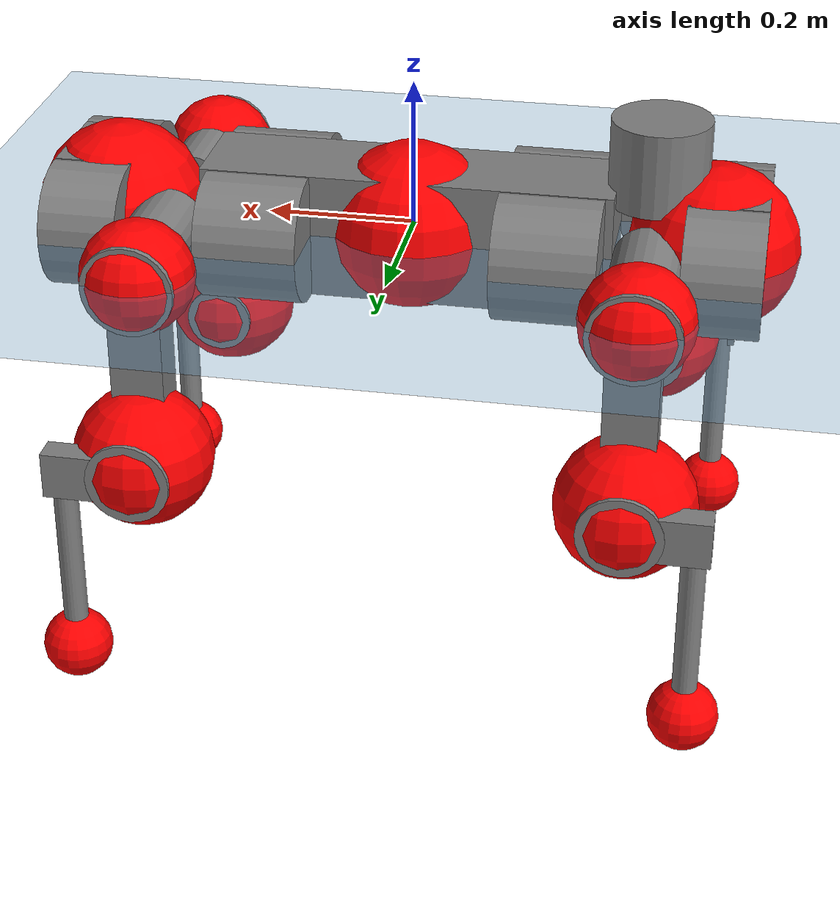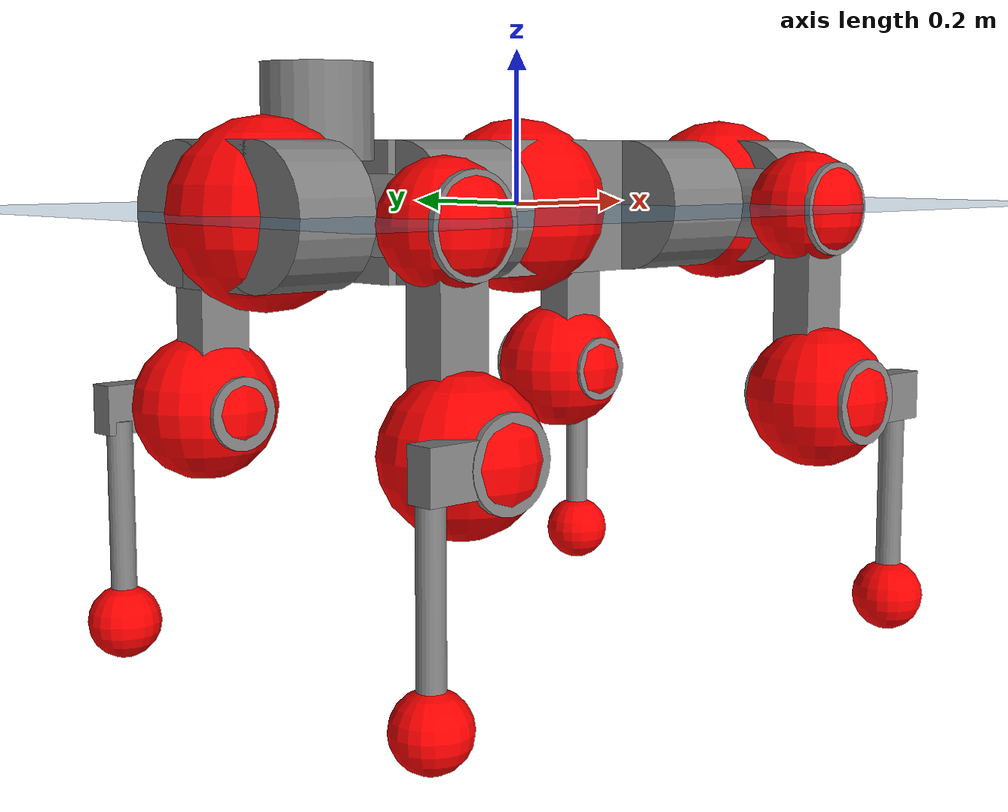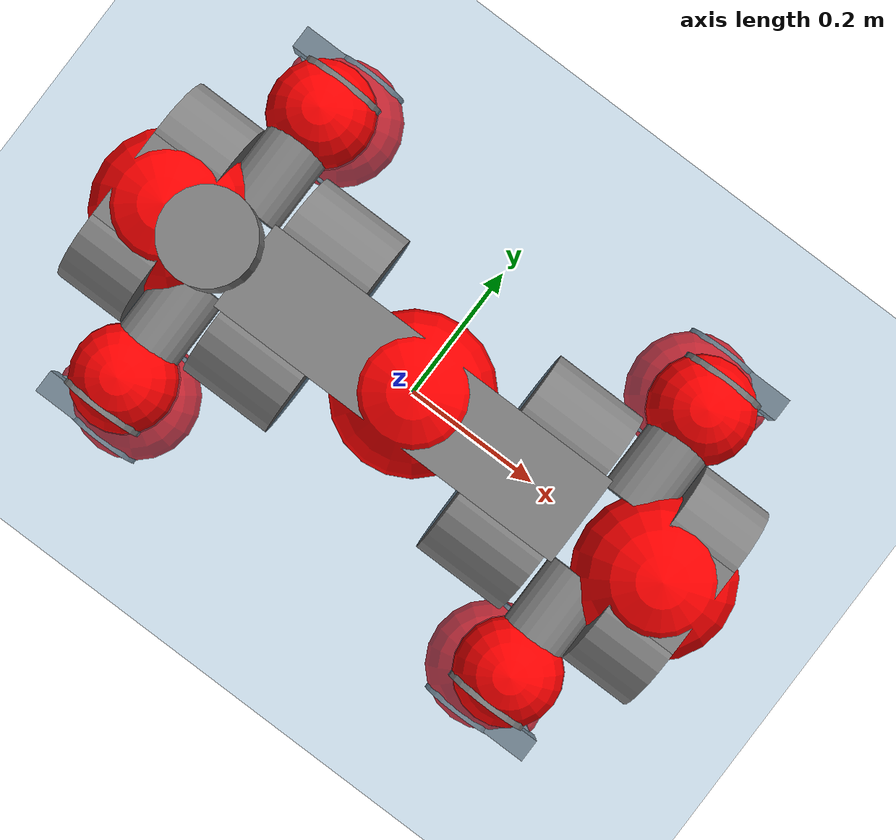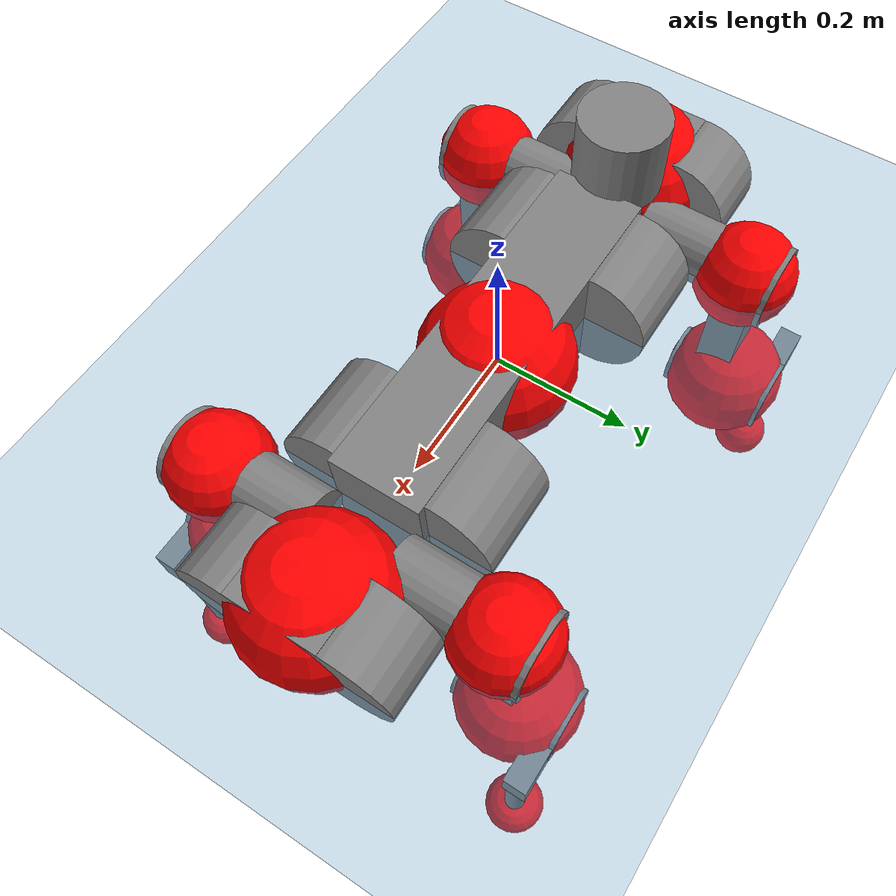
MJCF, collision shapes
<mujoco model="anymal_c">
  <compiler angle="radian" assetdir="assets" balanceinertia="true" inertiafromgeom="false"/>

  <option timestep="0.005" density="1.2" viscosity="2e-05"/>

  <size nkey="1"/>

  <visual>
    <quality shadowsize="8192"/>
    <map shadowclip="0.5"/>
  </visual>

  <default>
    <default class="/">
      <material specular="0" shininess="0.25"/>
      <geom contype="0" conaffinity="0" group="1" solref="-1000 -80"/>
      <site size="0.01 0.005 0.005" group="5"/>
      <general forcelimited="true" forcerange="-80 80" biastype="affine" gainprm="80" biasprm="0 -80 -2"/>
      <default class="anymal_c">
        <joint armature="0.01" damping="0.01" frictionloss="0.1"/>
        <default class="visual">
          <geom type="mesh" group="2"/>
          <default class="visual_zflip"/>
        </default>
        <default class="collision">
          <geom type="cylinder" group="3"/>
          <default class="foot">
            <geom size="0.03 0 0" type="sphere" condim="6" priority="1" friction="0.8 0.02 0.01" solimp="0.015 1 0.03"/>
          </default>
        </default>
      </default>
      <default class="reward_collision_sphere">
        <geom group="5" rgba="1 0 0 1"/>
      </default>
    </default>
  </default>

  <asset>
    <texture type="skybox" colorspace="auto" name="//unnamed_texture_0" builtin="gradient" rgb1="0.95 0.95 0.95" rgb2="0.95 0.95 0.95" width="100" height="600"/>
    <texture type="2d" colorspace="auto" name="texplane" builtin="checker" rgb1="0.345 0.575 0.748" rgb2="0.345 0.575 0.748" markrgb="1 1 1" width="512" height="512"/>
    <texture type="2d" colorspace="linear" name="base" file="base.png"/>
    <texture type="2d" colorspace="linear" name="top_shell" file="top_shell.png"/>
    <texture type="2d" colorspace="linear" name="bottom_shell" file="bottom_shell.png"/>
    <texture type="2d" colorspace="linear" name="remote" file="remote.png"/>
    <texture type="2d" colorspace="linear" name="hatch" file="hatch.png"/>
    <texture type="2d" colorspace="linear" name="handle" file="handle.png"/>
    <texture type="2d" colorspace="linear" name="face" file="face.png"/>
    <texture type="2d" colorspace="linear" name="battery" file="battery.png"/>
    <texture type="2d" colorspace="linear" name="lidar_cage" file="lidar_cage.png"/>
    <texture type="2d" colorspace="linear" name="depth_camera" file="depth_camera.png"/>
    <texture type="2d" colorspace="linear" name="wide_angle_camera" file="wide_angle_camera.png"/>
    <texture type="2d" colorspace="linear" name="lidar" file="lidar.png"/>
    <texture type="2d" colorspace="linear" name="drive" file="drive.png"/>
    <texture type="2d" colorspace="linear" name="hip_l" file="hip_l.png"/>
    <texture type="2d" colorspace="linear" name="shank_l" file="shank_l.png"/>
    <texture type="2d" colorspace="linear" name="foot" file="foot.png"/>
    <texture type="2d" colorspace="linear" name="thigh" file="thigh.png"/>
    <texture type="2d" colorspace="linear" name="shank_r" file="shank_r.png"/>
    <texture type="2d" colorspace="linear" name="hip_r" file="hip_r.png"/>
    <material name="MatPlane" class="/" texture="texplane" texuniform="true" texrepeat="2 2" specular="0.9" shininess="0.5"/>
    <material name="black_plastic" class="/" rgba="0.007 0.007 0.007 1"/>
    <material name="green" class="/" rgba="0.052 0.178 0.033 1"/>
    <material name="red" class="/" rgba="0.178 0.006 0.005 1"/>
    <material name="yellow" class="/" rgba="0.178 0.119 0.006 1"/>
    <material name="lwl" class="/" rgba="0.8 0.8 0.8 1"/>
    <material name="base" class="/" texture="base"/>
    <material name="top_shell" class="/" texture="top_shell"/>
    <material name="bottom_shell" class="/" texture="bottom_shell"/>
    <material name="hip_l" class="/" texture="hip_l"/>
    <material name="thigh" class="/" texture="thigh"/>
    <material name="shank_l" class="/" texture="shank_l"/>
    <material name="foot" class="/" texture="foot"/>
    <material name="hip_r" class="/" texture="hip_r"/>
    <material name="shank" class="/" texture="shank_r"/>
    <material name="hatch" class="/" texture="hatch"/>
    <material name="remote" class="/" texture="remote"/>
    <material name="handle" class="/" texture="handle"/>
    <material name="face" class="/" texture="face"/>
    <material name="depth_camera" class="/" texture="depth_camera"/>
    <material name="wide_angle_camera" class="/" texture="wide_angle_camera"/>
    <material name="battery" class="/" texture="battery"/>
    <material name="lidar_cage" class="/" texture="lidar_cage"/>
    <material name="lidar" class="/" texture="lidar"/>
    <material name="drive" class="/" texture="drive"/>
    <mesh name="base_0" class="/" file="base_0.obj"/>
    <mesh name="base_1" class="/" file="base_1.obj"/>
    <mesh name="base_2" class="/" file="base_2.obj"/>
    <mesh name="base_3" class="/" file="base_3.obj"/>
    <mesh name="base_4" class="/" file="base_4.obj"/>
    <mesh name="base_5" class="/" file="base_5.obj"/>
    <mesh name="top_shell" class="/" file="top_shell.obj"/>
    <mesh name="bottom_shell" class="/" file="bottom_shell.obj"/>
    <mesh name="remote" class="/" file="remote.obj"/>
    <mesh name="handle" class="/" file="handle.obj"/>
    <mesh name="face" class="/" file="face.obj"/>
    <mesh name="wide_angle_camera" class="/" file="wide_angle_camera.obj"/>
    <mesh name="depth_camera" class="/" file="depth_camera.obj"/>
    <mesh name="battery" class="/" file="battery.obj"/>
    <mesh name="lidar_cage" class="/" file="lidar_cage.obj"/>
    <mesh name="lidar" class="/" file="lidar.obj"/>
    <mesh name="drive" class="/" file="drive.obj"/>
    <mesh name="hip_l" class="/" file="hip_l.obj"/>
    <mesh name="thigh" class="/" file="thigh.obj"/>
    <mesh name="shank_l" class="/" file="shank_l.obj"/>
    <mesh name="foot" class="/" file="foot.obj"/>
    <mesh name="hip_r" class="/" file="hip_r.obj"/>
    <mesh name="hatch" class="/" file="hatch.obj"/>
    <mesh name="shank_r" class="/" file="shank_r.obj"/>
  </asset>

  <worldbody>
    <geom name="floor" class="/" size="100 100 0.125" type="plane" group="0" material="MatPlane"/>
    <light name="toplight_shadow" class="/" pos="0 0 5" dir="0.0990148 0.0990148 -0.990148" type="directional" ambient="0.04 0.04 0.04" diffuse="0.55 0.55 0.55" specular="0.12 0.12 0.12"/>
    <light name="toplight_fill" class="/" pos="0 0 5" dir="0.0990148 0.0990148 -0.990148" type="directional" castshadow="false" ambient="0.04 0.04 0.04" diffuse="0.3 0.3 0.3" specular="0.08 0.08 0.08"/>
    <body name="trunk" childclass="anymal_c" pos="0.00179115 -0.00127656 -0.00269097" quat="1 1.27977e-05 -7.25598e-05 -9.78143e-05">
      <inertial pos="0.00466129 -0.000815824 0.042513" quat="0.500278 0.49014 0.50918 0.500221" mass="17.392" diaginertia="0.376028 0.901576 0.121287"/>
      <joint name="//unnamed_joint_0" type="free" armature="0" damping="0" frictionloss="0"/>
      <geom name="//unnamed_geom_1" class="visual" material="green" mesh="base_0"/>
      <geom name="//unnamed_geom_2" class="visual" material="yellow" mesh="base_1"/>
      <geom name="//unnamed_geom_3" class="visual" material="red" mesh="base_2"/>
      <geom name="//unnamed_geom_4" class="visual" material="black_plastic" mesh="base_3"/>
      <geom name="//unnamed_geom_5" class="visual" material="lwl" mesh="base_4"/>
      <geom name="//unnamed_geom_6" class="visual" material="base" mesh="base_5"/>
      <geom name="trunk_1" class="collision" size="0.277109 0.0668883 0.0859993" type="box"/>
      <geom name="trunk_2" class="collision" size="0.0859993 0.0692772" pos="0.196432 0.0751904 0" quat="0.707107 0 0.707107 0"/>
      <geom name="trunk_3" class="collision" size="0.0859993 0.0692772" pos="-0.196432 0.0751904 0" quat="0.707107 0 0.707107 0"/>
      <geom name="trunk_4" class="collision" size="0.0859993 0.0692772" pos="0.196432 -0.0751904 0" quat="0.707107 0 0.707107 0"/>
      <geom name="trunk_5" class="collision" size="0.0859993 0.0692772" pos="-0.196432 -0.0751904 0" quat="0.707107 0 0.707107 0"/>
      <geom name="//unnamed_geom_12" class="visual" material="top_shell" mesh="top_shell"/>
      <geom name="//unnamed_geom_13" class="visual" material="bottom_shell" mesh="bottom_shell"/>
      <geom name="//unnamed_geom_14" class="visual" material="remote" mesh="remote"/>
      <geom name="//unnamed_geom_15" class="visual" material="handle" mesh="handle"/>
      <geom name="//unnamed_geom_16" class="visual" pos="0.374349 0 0" quat="1 0 0 0" material="face" mesh="face"/>
      <geom name="trunk_6" class="collision" size="0.0525551 0.0668883 0.0859993" pos="0.424021 0 0" type="box"/>
      <geom name="//unnamed_geom_18" class="collision" size="0.0859993 0.0525551" pos="0.424021 0.0751904 0" quat="0.707107 0 0.707107 0"/>
      <geom name="//unnamed_geom_19" class="collision" size="0.0859993 0.0525551" pos="0.424021 -0.0751904 0" quat="0.707107 0 0.707107 0"/>
      <geom name="//unnamed_geom_20" class="visual" pos="0.416931 0 -0.0258647" quat="0.965926 0 0.258819 0" material="depth_camera" mesh="depth_camera"/>
      <geom name="//unnamed_geom_21" class="visual" pos="0.463307 0 0.0133137" material="wide_angle_camera" mesh="wide_angle_camera"/>
      <geom name="//unnamed_geom_22" class="visual_zflip" pos="-0.374349 0 0" quat="0 0 0 1" material="face" mesh="face"/>
      <geom name="trunk_7" class="collision" size="0.0525551 0.0668883 0.0859993" pos="-0.424021 0 0" quat="0 0 0 1" type="box"/>
      <geom name="//unnamed_geom_24" class="collision" size="0.0859993 0.0525551" pos="-0.424021 -0.0751904 0" quat="0 -0.707107 0 0.707107"/>
      <geom name="//unnamed_geom_25" class="collision" size="0.0859993 0.0525551" pos="-0.424021 0.0751904 0" quat="0 -0.707107 0 0.707107"/>
      <geom name="//unnamed_geom_26" class="visual" pos="-0.416931 0 -0.0258647" quat="0 -0.258819 0 0.965926" material="depth_camera" mesh="depth_camera"/>
      <geom name="//unnamed_geom_27" class="visual_zflip" pos="-0.463307 0 0.0133137" quat="0 0 0 1" material="wide_angle_camera" mesh="wide_angle_camera"/>
      <geom name="//unnamed_geom_28" class="visual" material="battery" mesh="battery"/>
      <geom name="//unnamed_geom_29" class="visual" pos="0 0.0843728 0.0259406" quat="0.683013 -0.183013 0.183013 0.683013" material="depth_camera" mesh="depth_camera"/>
      <geom name="//unnamed_geom_30" class="visual" pos="0 -0.0843728 0.0259406" quat="0.683013 0.183013 0.183013 -0.683013" material="depth_camera" mesh="depth_camera"/>
      <geom name="//unnamed_geom_31" class="visual" pos="-0.328741 0 0.0653681" quat="1 0 0 0" material="lidar_cage" mesh="lidar_cage"/>
      <geom name="trunk_8" class="collision" size="0.0668883 0.0573329" pos="-0.328741 0 0.11873"/>
      <geom name="//unnamed_geom_33" class="visual" pos="-0.328741 6.7187e-05 0.126467" quat="0.707107 0 0 -0.707107" material="lidar" mesh="lidar"/>
      <geom name="//unnamed_geom_34" class="visual" pos="0.27085 0.111646 3.18758e-09" quat="0.258819 0.965926 0 0" material="drive" mesh="drive"/>
      <geom name="//unnamed_geom_35" class="visual" pos="0.27085 -0.111646 -3.18758e-09" quat="0.258819 -0.965926 0 0" material="drive" mesh="drive"/>
      <geom name="//unnamed_geom_36" class="visual" pos="-0.27085 0.111646 -3.18758e-09" quat="0 0 0.965926 -0.258819" material="drive" mesh="drive"/>
      <geom name="//unnamed_geom_37" class="visual" pos="-0.27085 -0.111646 3.18758e-09" quat="0 0 -0.965926 -0.258819" material="drive" mesh="drive"/>
      <geom name="//unnamed_geom_38" class="visual" pos="0.104763 0 0.0649234" quat="1 0 0 0" material="hatch" mesh="hatch"/>
      <geom name="//unnamed_geom_39" class="reward_collision_sphere" size="0.114666"/>
      <geom name="//unnamed_geom_40" class="reward_collision_sphere" size="0.114666" pos="0.40641 0 0"/>
      <geom name="//unnamed_geom_41" class="reward_collision_sphere" size="0.114666" pos="-0.40641 0 0"/>
      <site name="imu" pos="0.220436 0.0224046 0.028999" size="0.00955548"/>
      <camera name="track" pos="0 -2.1483 0" quat="0.707107 0.707107 0 0" mode="trackcom"/>
      <camera name="ego_camera" pos="0.40641 0 -0.0355745" quat="-0.5 -0.5 0.5 0.5"/>
      <body name="LF_HIP" pos="0.269232 0.110148 0.00292108" quat="0.259307 0.965795 -0.000253526 0.000816736">
        <inertial pos="0.0537362 -0.0185314 -0.00952069" quat="-0.1289 0.708448 -0.136184 0.680397" mass="2.38189" diaginertia="0.00343719 0.00710302 0.00187147"/>
        <joint name="LF_HAA" pos="0 0 0" axis="0.999921 0.00200152 -0.0124093" range="-0.713862 0.497584" armature="0.00991083" damping="0" frictionloss="0.108229"/>
        <geom name="//unnamed_geom_42" class="visual" pos="0 0.000187511 -3.07985e-05" quat="0.258819 -0.965926 0 0" material="hip_l" mesh="hip_l"/>
        <geom name="//unnamed_geom_43" class="visual" pos="0.0540977 -0.0677369 -0.0377411" quat="0.183013 -0.683013 0.683013 0.183013" material="drive" mesh="drive"/>
        <geom name="//unnamed_geom_44" class="collision" size="0.0477774 0.0668883" pos="0.0540977 -0.0128466 -0.00614104" quat="-0.353553 -0.612372 0.612372 -0.353553"/>
        <body name="LF_THIGH" pos="0.0529111 -0.0765206 -0.0357549" quat="0.182825 -0.683297 0.682832 0.18281">
          <inertial pos="0.0261119 -0.000191378 -0.21927" quat="0.993094 -0.00498321 -0.0809959 0.0847329" mass="2.58386" diaginertia="0.0179913 0.0437319 0.00223478"/>
          <joint name="LF_HFE" pos="0 0 0" axis="0.999932 1.90462e-05 0.0116631" range="-3.14508 3.15326" armature="0.00988012" damping="0.0159462" frictionloss="0.107383"/>
          <geom name="//unnamed_geom_45" class="visual" pos="-0.00340252 -5.36157e-06 0" quat="0.707107 0 0 -0.707107" material="thigh" mesh="thigh"/>
          <geom name="//unnamed_geom_46" class="collision" size="0.0621106 0.0382219" pos="0.0361253 0 0" quat="0.5 0.5 -0.5 -0.5"/>
          <geom name="//unnamed_geom_47" class="collision" size="0.035833 0.0286664 0.135032" pos="0.027094 0 -0.125679" quat="0.707107 0 0 -0.707107" type="box"/>
          <geom name="//unnamed_geom_48" class="visual" pos="0.0905843 0 -0.253468" quat="1 0 0 0" material="drive" mesh="drive"/>
          <geom name="//unnamed_geom_49" class="collision" size="0.0477774 0.0668883" pos="0.0273649 0 -0.253468" quat="0.707107 0 0.707107 0"/>
          <geom name="//unnamed_geom_50" class="reward_collision_sphere" size="0.0764438" pos="0.0225783 0 0"/>
          <body name="LF_SHANK" pos="0.0921279 0.000906976 -0.253441" quat="1 -0.000232082 -0.000144387 -0.00075029">
            <inertial pos="0.00694251 -0.0634414 -0.0726113" quat="0.992897 -0.116668 -0.00279125 -0.0231719" mass="0.527527" diaginertia="0.00588638 0.0135654 0.000608594"/>
            <joint name="LF_KFE" pos="0 0 0" axis="0.999914 -0.00355024 0.0126111" stiffness="6.9634e-05" range="-3.14259 3.14171" armature="0.0083747" damping="0.00956535" frictionloss="0.0904163"/>
            <geom name="//unnamed_geom_51" class="visual" pos="-0.00110949 -0.00591584 0" quat="0.707107 0 0 -0.707107" material="shank_l" mesh="shank_l"/>
            <geom name="LF_kfe_act" class="collision" size="0.0573329 0.019111" pos="0.0180627 0 0" quat="0.5 0.5 -0.5 -0.5"/>
            <geom name="//unnamed_geom_53" class="collision" size="0.054943 0.0322497 0.0181554" pos="0.0180627 -0.0617624 0" quat="0.5 0.5 -0.5 -0.5" type="box"/>
            <geom name="//unnamed_geom_54" class="visual" pos="0.0117862 -0.0963777 -0.300578" quat="0.382683 0 0 -0.92388" material="foot" mesh="foot"/>
            <geom name="LF_calf" class="collision" size="0.0167221 0.134973" pos="0.0117859 -0.0944713 -0.150289" quat="0.707107 0 0 -0.707107"/>
            <geom name="LF_foot" class="foot" size="0.0343021" pos="0.0117859 -0.0944713 -0.280567" quat="0.707107 0 0 -0.707107"/>
            <geom name="//unnamed_geom_57" class="reward_collision_sphere" size="0.0955548" pos="-0.0451567 0 0"/>
            <geom name="//unnamed_geom_58" class="reward_collision_sphere" size="0.0477774" pos="0.0117859 -0.0944713 -0.280567"/>
            <site name="LF_foot" class="foot" pos="0.0117859 -0.0944713 -0.280567" quat="0.707107 0 0 -0.707107" size="0.00955548"/>
          </body>
        </body>
      </body>
      <body name="RF_HIP" pos="0.271828 -0.112543 0.000767344" quat="0.259439 -0.965759 -7.73183e-05 0.00117271">
        <inertial pos="0.0516784 0.019504 -0.00762838" quat="0.135474 0.680038 0.130228 0.708686" mass="2.35735" diaginertia="0.00352045 0.00697073 0.00181987"/>
        <joint name="RF_HAA" pos="0 0 0" axis="1 -2.08189e-05 -0.000874355" range="-0.449053 0.702389" armature="0.0105766" damping="0.00997895" frictionloss="0.0862092"/>
        <geom name="//unnamed_geom_59" class="visual" pos="0 -0.000187509 -3.07984e-05" quat="0.258819 0.965926 0 0" material="hip_r" mesh="hip_r"/>
        <geom name="//unnamed_geom_60" class="visual" pos="0.0540977 0.0677369 -0.0377411" quat="0.183013 0.683013 0.683013 -0.183013" material="drive" mesh="drive"/>
        <geom name="//unnamed_geom_61" class="collision" size="0.0477774 0.0668883" pos="0.0540977 0.0128466 -0.00614104" quat="-0.353553 0.612372 0.612372 0.353553"/>
        <body name="RF_THIGH" pos="0.0554673 0.0765609 -0.0381621" quat="0.183669 0.68285 0.682974 -0.183109">
          <inertial pos="0.0267738 0.00234634 -0.220851" quat="0.992576 -0.00489867 -0.0854851 0.0863827" mass="2.67563" diaginertia="0.0174071 0.0399458 0.00224086"/>
          <joint name="RF_HFE" pos="0 0 0" axis="0.999909 0.00321331 -0.0130874" stiffness="0.00364344" range="-3.19521 3.08733" armature="0.00954888" damping="0.00836153" frictionloss="0.10823"/>
          <geom name="//unnamed_geom_62" class="visual" pos="-0.00340252 -5.36157e-06 0" quat="0.707107 0 0 -0.707107" material="thigh" mesh="thigh"/>
          <geom name="//unnamed_geom_63" class="collision" size="0.0621106 0.0382219" pos="0.0361253 0 0" quat="0.5 0.5 0.5 0.5"/>
          <geom name="//unnamed_geom_64" class="collision" size="0.035833 0.0286664 0.135032" pos="0.027094 0 -0.125679" quat="0.707107 0 0 0.707107" type="box"/>
          <geom name="//unnamed_geom_65" class="visual" pos="0.0905843 0 -0.253468" quat="1 0 0 0" material="drive" mesh="drive"/>
          <geom name="//unnamed_geom_66" class="collision" size="0.0477774 0.0668883" pos="0.0273649 0 -0.253468" quat="0.707107 0 0.707107 0"/>
          <geom name="//unnamed_geom_67" class="reward_collision_sphere" size="0.0764438" pos="0.0225783 0 0"/>
          <body name="RF_SHANK" pos="0.0925306 0.000466357 -0.254491" quat="1 5.61583e-05 5.24117e-05 -0.000103929">
            <inertial pos="0.00745551 0.0654534 -0.0739588" quat="0.992315 0.120649 -0.00301123 0.0273226" mass="0.52941" diaginertia="0.00609625 0.0130466 0.000618936"/>
            <joint name="RF_KFE" pos="0 0 0" axis="1 -0.0003742 -0.000501344" range="-3.16209 3.12334" armature="0.00944564" damping="0.0195503" frictionloss="0.106589"/>
            <geom name="//unnamed_geom_68" class="visual" pos="-0.00110948 0.00591583 0" quat="0.707107 0 0 0.707107" material="shank" mesh="shank_r"/>
            <geom name="RF_kfe_act" class="collision" size="0.0573329 0.019111" pos="0.0180627 0 0" quat="0.5 0.5 0.5 0.5"/>
            <geom name="//unnamed_geom_70" class="collision" size="0.054943 0.0322497 0.0181554" pos="0.0180627 0.0617624 0" quat="0.5 0.5 0.5 0.5" type="box"/>
            <geom name="//unnamed_geom_71" class="visual" pos="0.0117856 0.0963777 -0.300578" quat="0.382683 0 0 0.92388" material="foot" mesh="foot"/>
            <geom name="RF_calf" class="collision" size="0.0167221 0.134973" pos="0.0117859 0.0944713 -0.150289" quat="0.707107 0 0 0.707107"/>
            <geom name="RF_foot" class="foot" size="0.0290569" pos="0.0117859 0.0944713 -0.280567" quat="0.707107 0 0 0.707107"/>
            <geom name="//unnamed_geom_74" class="reward_collision_sphere" size="0.0955548" pos="-0.0451567 0 0"/>
            <geom name="//unnamed_geom_75" class="reward_collision_sphere" size="0.0477774" pos="0.0117859 0.0944713 -0.280567"/>
            <site name="RF_foot" class="foot" pos="0.0117859 0.0944713 -0.280567" quat="0.707107 0 0 0.707107" size="0.00955548"/>
          </body>
        </body>
      </body>
      <body name="LH_HIP" pos="-0.271093 0.11443 0.00204847" quat="-0.000964021 0.000736101 0.965636 -0.259896">
        <inertial pos="0.0494225 0.0140536 -0.0071245" quat="0.135531 0.679682 0.127458 0.70952" mass="2.4735" diaginertia="0.00348665 0.00707674 0.00176566"/>
        <joint name="LH_HAA" pos="0 0 0" axis="0.999977 0.0058199 0.00351612" stiffness="0.00535097" range="-0.530307 0.745739" armature="0.00959195" damping="0.0107305" frictionloss="0.108472"/>
        <geom name="//unnamed_geom_76" class="visual" pos="0 -0.000187509 -3.07984e-05" quat="-0.258819 -0.965926 0 0" material="hip_r" mesh="hip_r"/>
        <geom name="//unnamed_geom_77" class="visual" pos="0.0540977 0.0677369 -0.0377411" quat="0.183013 0.683013 0.683013 -0.183013" material="drive" mesh="drive"/>
        <geom name="//unnamed_geom_78" class="collision" size="0.0477774 0.0668883" pos="0.0540977 0.0128466 -0.00614104" quat="-0.353553 0.612372 0.612372 0.353553"/>
        <body name="LH_THIGH" pos="0.0551848 0.0807887 -0.0364806" quat="0.182921 0.683358 0.682863 -0.182373">
          <inertial pos="0.0287686 -0.0017158 -0.219833" quat="0.992489 -0.00520797 -0.0829345 0.0897831" mass="2.68264" diaginertia="0.0187512 0.0424866 0.00240652"/>
          <joint name="LH_HFE" pos="0 0 0" axis="0.999972 0.00427971 -0.0060716" range="-3.16853 3.15861" armature="0.00889806" damping="0.0154386" frictionloss="0.0827951"/>
          <geom name="//unnamed_geom_79" class="visual" pos="-0.00340252 -5.36157e-06 0" quat="0.707107 0 0 -0.707107" material="thigh" mesh="thigh"/>
          <geom name="//unnamed_geom_80" class="collision" size="0.0621106 0.0382219" pos="0.0361253 0 0" quat="0.5 0.5 -0.5 -0.5"/>
          <geom name="//unnamed_geom_81" class="collision" size="0.035833 0.0286664 0.135032" pos="0.027094 0 -0.125679" quat="0.707107 0 0 -0.707107" type="box"/>
          <geom name="//unnamed_geom_82" class="visual" pos="0.0905843 0 -0.253468" quat="1 0 0 0" material="drive" mesh="drive"/>
          <geom name="//unnamed_geom_83" class="collision" size="0.0477774 0.0668883" pos="0.0273649 0 -0.253468" quat="0.707107 0 0.707107 0"/>
          <geom name="//unnamed_geom_84" class="reward_collision_sphere" size="0.0764438" pos="0.0225783 0 0"/>
          <body name="LH_SHANK" pos="0.0935703 7.1819e-05 -0.251628" quat="1 -0.000363015 -3.19306e-05 0.00019934">
            <inertial pos="0.00507039 0.0655154 -0.0695665" quat="0.992963 0.115925 -0.00221216 0.0240925" mass="0.515108" diaginertia="0.00608283 0.0129815 0.000620579"/>
            <joint name="LH_KFE" pos="0 0 0" axis="0.999956 -0.00878903 -0.00337972" range="-3.19401 3.14284" armature="0.00844275" damping="0.0138672" frictionloss="0.0997972"/>
            <geom name="//unnamed_geom_85" class="visual" pos="-0.00110948 0.00591583 0" quat="-0.707107 0 0 -0.707107" material="shank" mesh="shank_r"/>
            <geom name="LH_kfe_act" class="collision" size="0.0573329 0.019111" pos="0.0180627 0 0" quat="0.5 0.5 -0.5 -0.5"/>
            <geom name="//unnamed_geom_87" class="collision" size="0.054943 0.0322497 0.0181554" pos="0.0180627 0.0617624 0" quat="0.5 0.5 -0.5 -0.5" type="box"/>
            <geom name="//unnamed_geom_88" class="visual" pos="0.0117856 0.0963777 -0.300578" quat="-0.382683 0 0 -0.92388" material="foot" mesh="foot"/>
            <geom name="LH_calf" class="collision" size="0.0167221 0.134973" pos="0.0117859 0.0944713 -0.150289" quat="0.707107 0 0 -0.707107"/>
            <geom name="LH_foot" class="foot" size="0.0306431" pos="0.0117859 0.0944713 -0.280567" quat="0.707107 0 0 -0.707107"/>
            <geom name="//unnamed_geom_91" class="reward_collision_sphere" size="0.0955548" pos="-0.0451567 0 0"/>
            <geom name="//unnamed_geom_92" class="reward_collision_sphere" size="0.0477774" pos="0.0117859 0.0944713 -0.280567"/>
            <site name="LH_foot" class="foot" pos="0.0117859 0.0944713 -0.280567" quat="0.707107 0 0 -0.707107" size="0.00955548"/>
          </body>
        </body>
      </body>
      <body name="RH_HIP" pos="-0.269271 -0.109721 0.000103018" quat="0.000162925 -0.000155421 -0.965715 -0.259606">
        <inertial pos="0.0513262 -0.0160441 -0.00783651" quat="-0.128936 0.712865 -0.13585 0.675828" mass="2.45384" diaginertia="0.00365287 0.00727262 0.00178993"/>
        <joint name="RH_HAA" pos="0 0 0" axis="0.999988 -0.00165312 -0.00464016" range="-0.696488 0.473939" armature="0.00871283" damping="0" frictionloss="0.0975956"/>
        <geom name="//unnamed_geom_93" class="visual" pos="0 0.000187511 -3.07985e-05" quat="-0.258819 0.965926 0 0" material="hip_l" mesh="hip_l"/>
        <geom name="//unnamed_geom_94" class="visual" pos="0.0540977 -0.0677369 -0.0377411" quat="-0.183013 0.683013 -0.683013 -0.183013" material="drive" mesh="drive"/>
        <geom name="//unnamed_geom_95" class="collision" size="0.0477774 0.0668883" pos="0.0540977 -0.0128466 -0.00614104" quat="0.353553 0.612372 -0.612372 0.353553"/>
        <body name="RH_THIGH" pos="0.053554 -0.0789605 -0.0368478" quat="-0.182442 0.683296 -0.683258 -0.181605">
          <inertial pos="0.0275089 -0.00254057 -0.218624" quat="0.993096 -0.00327149 -0.0811744 0.0846132" mass="2.50725" diaginertia="0.0169757 0.0415947 0.00227652"/>
          <joint name="RH_HFE" pos="0 0 0" axis="0.999943 0.0105488 -0.001503" range="-3.12037 3.18001" armature="0.010563" damping="0" frictionloss="0.084212"/>
          <geom name="//unnamed_geom_96" class="visual" pos="-0.00340252 -5.36157e-06 0" quat="0.707107 0 0 -0.707107" material="thigh" mesh="thigh"/>
          <geom name="//unnamed_geom_97" class="collision" size="0.0621106 0.0382219" pos="0.0361253 0 0" quat="0.5 0.5 0.5 0.5"/>
          <geom name="//unnamed_geom_98" class="collision" size="0.035833 0.0286664 0.135032" pos="0.027094 0 -0.125679" quat="0.707107 0 0 0.707107" type="box"/>
          <geom name="//unnamed_geom_99" class="visual" pos="0.0905843 0 -0.253468" quat="1 0 0 0" material="drive" mesh="drive"/>
          <geom name="//unnamed_geom_100" class="collision" size="0.0477774 0.0668883" pos="0.0273649 0 -0.253468" quat="0.707107 0 0.707107 0"/>
          <geom name="//unnamed_geom_101" class="reward_collision_sphere" size="0.0764438" pos="0.0225783 0 0"/>
          <body name="RH_SHANK" pos="0.093683 0.00114656 -0.254342" quat="1 -2.40843e-06 6.5399e-05 -0.00073564">
            <inertial pos="0.00206066 -0.0657373 -0.0695859" quat="0.993437 -0.109254 -0.0106143 -0.0321642" mass="0.510072" diaginertia="0.00644215 0.0133763 0.00065132"/>
            <joint name="RH_KFE" pos="0 0 0" axis="0.999768 -0.00440972 -0.021069" range="-3.11545 3.07638" armature="0.00924686" damping="0.0136384" frictionloss="0.107268"/>
            <geom name="//unnamed_geom_102" class="visual" pos="-0.00110949 -0.00591584 0" quat="0.707107 0 0 -0.707107" material="shank_l" mesh="shank_l"/>
            <geom name="RH_kfe_act" class="collision" size="0.0573329 0.019111" pos="0.0180627 0 0" quat="0.5 0.5 0.5 0.5"/>
            <geom name="//unnamed_geom_104" class="collision" size="0.054943 0.0322497 0.0181554" pos="0.0180627 -0.0617624 0" quat="0.5 0.5 0.5 0.5" type="box"/>
            <geom name="//unnamed_geom_105" class="visual" pos="0.0117862 -0.0963777 -0.300578" quat="0.382683 0 0 -0.92388" material="foot" mesh="foot"/>
            <geom name="RH_calf" class="collision" size="0.0167221 0.134973" pos="0.0117859 -0.0944713 -0.150289" quat="0.707107 0 0 0.707107"/>
            <geom name="RH_foot" class="foot" size="0.0237341" pos="0.0117859 -0.0944713 -0.280567" quat="0.707107 0 0 0.707107"/>
            <geom name="//unnamed_geom_108" class="reward_collision_sphere" size="0.0955548" pos="-0.0451567 0 0"/>
            <geom name="//unnamed_geom_109" class="reward_collision_sphere" size="0.0477774" pos="0.0117859 -0.0944713 -0.280567"/>
            <site name="RH_foot" class="foot" pos="0.0117859 -0.0944713 -0.280567" quat="0.707107 0 0 0.707107" size="0.00955548"/>
          </body>
        </body>
      </body>
    </body>
  </worldbody>

  <contact>
    <pair class="/" geom1="floor" geom2="LF_foot" name="//unnamed_contact_0"/>
    <pair class="/" geom1="floor" geom2="RF_foot" name="//unnamed_contact_1"/>
    <pair class="/" geom1="floor" geom2="LH_foot" name="//unnamed_contact_2"/>
    <pair class="/" geom1="floor" geom2="RH_foot" name="//unnamed_contact_3"/>
  </contact>

  <actuator>
    <general name="LF_HAA" class="/" joint="LF_HAA" forcerange="-78.9591 78.9591" gainprm="76.6108" biasprm="0 -76.6108 -2.11127"/>
    <general name="LF_HFE" class="/" joint="LF_HFE" forcerange="-69.7083 69.7083" gainprm="76.6108" biasprm="0 -76.6108 -2.11127"/>
    <general name="LF_KFE" class="/" joint="LF_KFE" forcerange="-78.2025 78.2025" gainprm="76.6108" biasprm="0 -76.6108 -2.11127"/>
    <general name="RF_HAA" class="/" joint="RF_HAA" forcerange="-68.908 68.908" gainprm="76.6108" biasprm="0 -76.6108 -2.11127"/>
    <general name="RF_HFE" class="/" joint="RF_HFE" forcerange="-75.6998 75.6998" gainprm="76.6108" biasprm="0 -76.6108 -2.11127"/>
    <general name="RF_KFE" class="/" joint="RF_KFE" forcerange="-73.967 73.967" gainprm="76.6108" biasprm="0 -76.6108 -2.11127"/>
    <general name="LH_HAA" class="/" joint="LH_HAA" forcerange="-76.5612 76.5612" gainprm="76.6108" biasprm="0 -76.6108 -2.11127"/>
    <general name="LH_HFE" class="/" joint="LH_HFE" forcerange="-76.1512 76.1512" gainprm="76.6108" biasprm="0 -76.6108 -2.11127"/>
    <general name="LH_KFE" class="/" joint="LH_KFE" forcerange="-77.1915 77.1915" gainprm="76.6108" biasprm="0 -76.6108 -2.11127"/>
    <general name="RH_HAA" class="/" joint="RH_HAA" forcerange="-80.489 80.489" gainprm="76.6108" biasprm="0 -76.6108 -2.11127"/>
    <general name="RH_HFE" class="/" joint="RH_HFE" forcerange="-69.8605 69.8605" gainprm="76.6108" biasprm="0 -76.6108 -2.11127"/>
    <general name="RH_KFE" class="/" joint="RH_KFE" forcerange="-73.6285 73.6285" gainprm="76.6108" biasprm="0 -76.6108 -2.11127"/>
  </actuator>

  <sensor>
    <gyro site="imu" name="imu_angular_velocity"/>
    <velocimeter site="imu" name="imu_linear_velocity"/>
    <framelinvel objtype="site" objname="LF_foot" name="LF_foot_global_linear_velocity"/>
    <framelinvel objtype="site" objname="RF_foot" name="RF_foot_global_linear_velocity"/>
    <framelinvel objtype="site" objname="LH_foot" name="LH_foot_global_linear_velocity"/>
    <framelinvel objtype="site" objname="RH_foot" name="RH_foot_global_linear_velocity"/>
  </sensor>

  <keyframe>
    <key name="home" qpos="0 0 0.55 1 0 0 0 0 0.4 -0.8 0 -0.4 0.8 0 -0.4 0.8 0 0.4 -0.8"/>
  </keyframe>
</mujoco>
